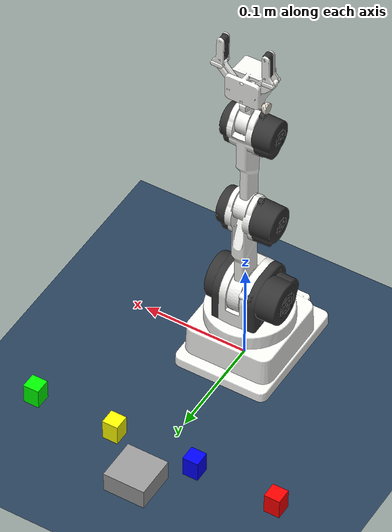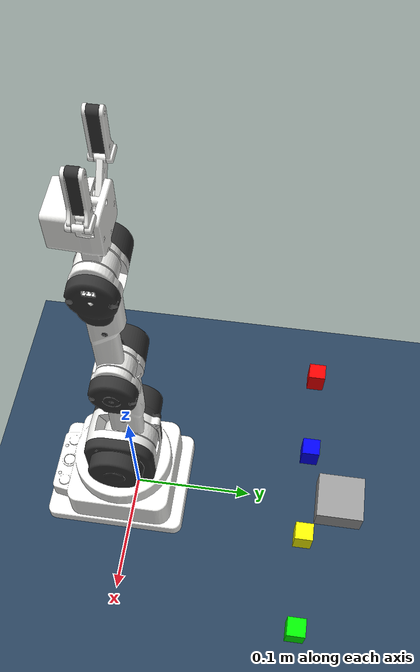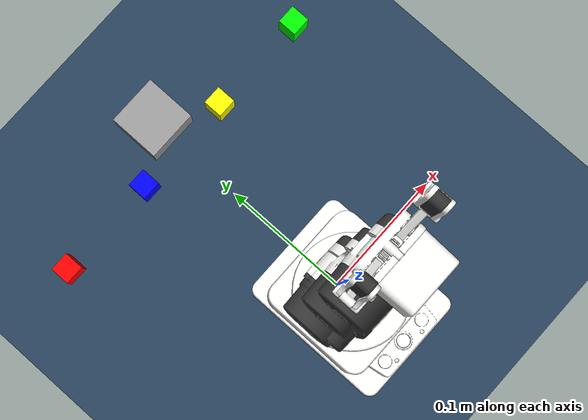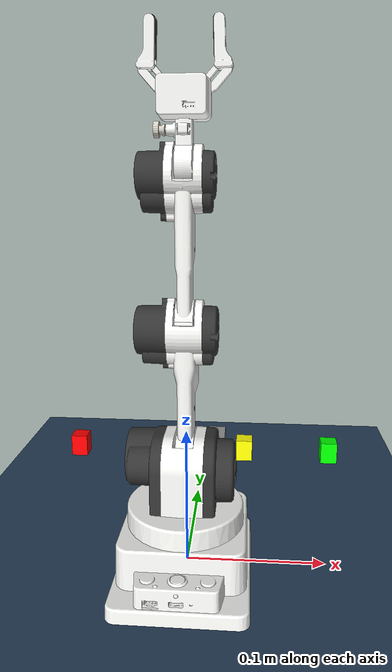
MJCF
<mujoco model="Raccoon_S_5cm_stack">
  <include file="RaccoonBot_S.xml"/>

  <statistic center="0.0 0 0.2" extent="0.5"/>

  <visual>
    <headlight diffuse="0.6 0.6 0.6" ambient="0.1 0.1 0.1" specular="0 0 0"/>
    <rgba haze="0.15 0.25 0.35 1"/>
    <global azimuth="120" elevation="-20"/>
  </visual>

  <asset>
    <texture type="skybox" builtin="gradient" rgb1="0.3 0.5 0.7" rgb2="0 0 0" width="512" height="3072"/>
    <texture type="2d" name="groundplane" builtin="checker" mark="edge"
      rgb1="0.2 0.3 0.4" rgb2="0.1 0.2 0.3"
      markrgb="0.8 0.8 0.8" width="300" height="300"/>
    <material name="groundplane" texture="groundplane" texuniform="true" texrepeat="20 20" reflectance="0.0"/>
  </asset>

  <worldbody>
    <light pos="0 0 1.5" dir="0 0 -1" directional="true"/>
    <geom name="floor" size="0.5 0.5 0.05" type="plane" material="groundplane"/>
    <camera name="front_view" pos="0.0 0.50 0.13" xyaxes="-1 0 0 0 -0.18 0.98" fovy="45"/>

    <body name="stack_base" pos="0.0 0.18 0.01">
      <geom name="geom_base" type="box" size="0.02 0.02 0.01"
        rgba="0.6 0.6 0.6 1" friction="1 1 1" condim="6"
        solimp="0.99 0.99 0.001" solref="0.002 1"/>
    </body>

    <!-- Red object: 기존 코드 호환을 위해 body name은 target_object 유지 -->
    <body name="target_object" pos="-0.12 0.15 0.02">
      <freejoint/>
      <inertial pos="0 0 0" mass="0.05" diaginertia="0.00000001 0.00000001 0.00000001"/>
      <geom name="geom_red" type="box" size="0.0075 0.0075 0.01"
        rgba="1 0 0 1"
        friction="1 1 1" condim="6"
        solimp="0.99 0.99 0.001" solref="0.002 1"/>
    </body>

    <!-- Blue object -->
    <body name="target_object_blue" pos="-0.04 0.15 0.02">
      <freejoint/>
      <inertial pos="0 0 0" mass="0.05" diaginertia="0.00000001 0.00000001 0.00000001"/>
      <geom name="geom_blue" type="box" size="0.0075 0.0075 0.01"
        rgba="0 0 1 1"
        friction="1 1 1" condim="6"
        solimp="0.99 0.99 0.001" solref="0.002 1"/>
    </body>

    <!-- Yellow object -->
    <body name="target_object_yellow" pos="0.04 0.15 0.02">
      <freejoint/>
      <inertial pos="0 0 0" mass="0.05" diaginertia="0.00000001 0.00000001 0.00000001"/>
      <geom name="geom_yellow" type="box" size="0.0075 0.0075 0.01"
        rgba="1 1 0 1"
        friction="1 1 1" condim="6"
        solimp="0.99 0.99 0.001" solref="0.002 1"/>
    </body>

    <!-- Green object -->
    <body name="target_object_green" pos="0.12 0.15 0.02">
      <freejoint/>
      <inertial pos="0 0 0" mass="0.05" diaginertia="0.00000001 0.00000001 0.00000001"/>
      <geom name="geom_green" type="box" size="0.0075 0.0075 0.01"
        rgba="0 1 0 1"
        friction="1 1 1" condim="6"
        solimp="0.99 0.99 0.001" solref="0.002 1"/>
    </body>

  </worldbody>
</mujoco>

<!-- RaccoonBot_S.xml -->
<!-- 로보메이션 라쿤봇 MuJoCo 모델 --> <!-- Robomation RaccoonBot MuJoCo Model -->

<mujoco model="RaccoonBot_S">
  <compiler inertiafromgeom="false" angle="radian" meshdir="assets"/>
  <option integrator="implicitfast" timestep="0.0002" cone="elliptic" noslip_iterations="100"/>

  <default>
    <!-- class 선언 (그룹별로 묶어서 물리계산에 사용할 것과 시각적요소로만 사용할것 분리 -->
    <default class="collision">
      <geom group="3" type="mesh" rgba="255 0 0 0.1"/> <!-- 그룹 3부터 안보임. 보려면 키보드 숫자 누르면됨. -->
    </default>

    <default class="visual">
      <geom group="1" type="mesh" contype="0" conaffinity="0" material="White"/>
    </default>

    <!-- 조인트 기본값 설정 -->
    <joint damping="0.001"></joint>
  </default>

  <asset>
    <!-- 색상 정의 -->
    <material name="White" rgba="0.964706 0.964706 0.952941 1" specular="0.5" shininess="0.5"/>
    <material name="Black"  rgba="0.2 0.2 0.2 1" specular="0.7" shininess="0.5"/>
    <material name="Gray"  rgba="0.501960784 0.501960784 0.501960784 1" specular="0.5" shininess="0.5"/>
    <material name="Silver"  rgba="0.819608 0.8 0.752941 1" specular="0.5" shininess="0.5"/>

    <!-- 물리계산용 덩어리-->
    <mesh name="base_link" file="base_link.STL"/>
    <mesh name="Link1" file="Link1.STL"/>
    <mesh name="Link2" file="Link2.STL"/>
    <mesh name="Link3" file="Link3.STL"/>
    <mesh name="Link4" file="Link4.STL"/>
    <mesh name="Gripper_Body" file="Gripper_Body.STL"/>
    <mesh name="Gripper_L_Inner" file="Gripper_L_Inner.STL"/>
    <mesh name="Gripper_L_Outer" file="Gripper_L_Outer.STL"/>
    <mesh name="Gripper_L_Finger" file="Gripper_L_Finger.STL"/>
    <mesh name="Gripper_R_Inner" file="Gripper_R_Inner.STL"/>
    <mesh name="Gripper_R_Outer" file="Gripper_R_Outer.STL"/>
    <mesh name="Gripper_R_Finger" file="Gripper_R_Finger.STL"/>

        <!-- 색입히기용 파츠 -->
    <mesh file="visual/Gripper_Left_Finger.STL" scale="0.001 0.001 0.001"/>
    <mesh file="visual/Gripper_Left_Silicon.STL" scale="0.001 0.001 0.001"/>
    <mesh file="visual/Gripper_Right_Finger.STL" scale="0.001 0.001 0.001"/>
    <mesh file="visual/Gripper_Right_Silicon.STL" scale="0.001 0.001 0.001"/>
    <mesh file="visual/Link1_cover.STL" scale="0.001 0.001 0.001"/>
    <mesh file="visual/Link1_sticker.STL" scale="0.001 0.001 0.001"/>
    <mesh file="visual/Link1_white.STL" scale="0.001 0.001 0.001"/>
    <mesh file="visual/Link2_cover.STL" scale="0.001 0.001 0.001"/>
    <mesh file="visual/Link2_sticker.STL" scale="0.001 0.001 0.001"/>
    <mesh file="visual/Link2_white.STL" scale="0.001 0.001 0.001"/>
    <mesh file="visual/Link3_cover.STL" scale="0.001 0.001 0.001"/>
    <mesh file="visual/Link3_sticker.STL" scale="0.001 0.001 0.001"/>
    <mesh file="visual/Link3_white.STL" scale="0.001 0.001 0.001"/>
    <mesh file="visual/Link4_black_screw.STL" scale="0.001 0.001 0.001"/>
    <mesh file="visual/Link4_silver_screw.STL" scale="0.001 0.001 0.001"/>
    <mesh file="visual/Link4_white.STL" scale="0.001 0.001 0.001"/>
  </asset>

  <worldbody>
    <body name="Base" pos="0 0 0">
      <inertial pos="-1.683E-05 -0.014249 0.0092419" mass="0.57431" fullinertia="0.00055171 0.00034874 0.00076716 1E-07 -2.5E-07 -8.36E-06"/>
      <geom class="collision" type="mesh" mesh="base_link"/> <!-- 물리 계산용 -->
      <geom class="visual" type="mesh" mesh="base_link"/> <!-- 색칠 -->

      <body name="Link1" pos="0 0 0.057088">
        <inertial pos="-0.013986 -0.0022667 0.020829" quat="0.2836 0.500773 0.328724 0.748824" mass="0.1138" diaginertia="5.60418e-05 5.26103e-05 3.52979e-05"/>
        <joint name="Joint1" pos="0 0 0" axis="0 0 1" range="-2.0944 2.0944" damping="0" armature="0" frictionloss="0"/>
        <geom class="collision" type="mesh" mesh="Link1"/> <!-- 물리 계산용 -->
        <geom class="visual" type="mesh" mesh="Link1_cover" material="Black"/> <!-- 색칠 -->
        <geom class="visual" type="mesh" mesh="Link1_sticker" material="Gray"/> <!-- 색칠 -->
        <geom class="visual" type="mesh" mesh="Link1_white"/> <!-- 색칠 -->

        <body name="Link2" pos="0 0 0.023662" quat="0.499998 -0.5 -0.500002 0.5">
          <inertial pos="0.0068563 -0.07084 0.008848" quat="0.614196 0.689345 -0.323933 0.206482" mass="0.0687" diaginertia="0.000109909 9.71792e-05 1.81218e-05"/>
          <joint name="Joint2" pos="0 0 0" axis="0 0 -1" range="-1.5707 0.5237" damping="0" armature="0" frictionloss="0"/>
          <geom class="collision" type="mesh" mesh="Link2"/> <!-- 물리 계산용 -->
          <geom class="visual" type="mesh" mesh="Link2_cover" material="Black"/> <!-- 색칠 -->
          <geom class="visual" type="mesh" mesh="Link2_sticker" material="Gray"/> <!-- 색칠 -->
          <geom class="visual" type="mesh" mesh="Link2_white"/> <!-- 색칠 -->

          <body name="Link3" pos="1.0056e-05 -0.1 0" quat="-3.67321e-06 0 0 1">
            <inertial pos="0.0095601 0.090032 0.013618" quat="0.697287 0.617503 -0.178314 0.317308" mass="0.058" diaginertia="5.14233e-05 4.48418e-05 1.03349e-05"/>
            <joint name="Joint3" pos="0 0 0" axis="0 0 -1" range="-2.618 0" damping="0" armature="0" frictionloss="0"/>
            <geom class="collision" type="mesh" mesh="Link3"/> <!-- 물리 계산용 -->
            <geom class="visual" type="mesh" mesh="Link3_cover" material="Black"/> <!-- 색칠 -->
            <geom class="visual" type="mesh" mesh="Link3_sticker" material="Gray"/> <!-- 색칠 -->
            <geom class="visual" type="mesh" mesh="Link3_white"/> <!-- 색칠 -->

            <body name="Link4" pos="-1.0056e-05 0.1 0">
              <inertial pos="0.00246483 0.0280152 0.0033435" quat="0.767161 0.570932 -0.211927 0.201462" mass="0.0247" diaginertia="8.82308e-06 8.70279e-06 3.10133e-06"/>
              <joint name="Joint4" pos="0 0 0" axis="0 0 -1" range="-1.8326 1.8326" damping="0" armature="0" frictionloss="0"/>
              <geom class="collision" type="mesh" mesh="Link4"/> <!-- 물리 계산용 -->
              <geom class="collision" type="mesh" mesh="Gripper_Body"/> <!-- 물리 계산용 -->
              <geom class="visual" type="mesh" mesh="Link4_black_screw" material="Black"/> <!-- 색칠 -->
              <geom class="visual" type="mesh" mesh="Link4_silver_screw" material="Silver"/> <!-- 색칠 -->
              <geom class="visual" type="mesh" mesh="Link4_white"/> <!-- 색칠 -->

              <body name="Gripper_L_Inner" pos="-0.0011487 0.042412 0.005" quat="0.707105 0 0.707108 0">
                <inertial pos="-0.0059722 0.0072138 -0.0046001" quat="0.653281 0.653281 -0.270598 -0.270598" mass="0.00058" diaginertia="5e-08 5e-08 1e-08"/>
                <joint name="Gripper_L_Inner" pos="0 0 0" axis="0 0 1" range="-0.85 0.15701"/>
                <geom class="collision" type="mesh" mesh="Gripper_L_Inner"/> <!-- 물리 계산용 -->
                <geom class="visual" type="mesh" mesh="Gripper_L_Inner"/> <!-- 색칠 -->
                <site name="left_inner_site" rgba="255 0 0 0" pos="-0.0153878 0.0170945 -0.0044918" size="0.0025"/> <!-- 조인트 결합용 좌표지점 -->
              </body>

              <body name="Gripper_L_Outer" pos="-0.0010987 0.042412 0.0125" quat="0.707105 0 0.707108 0">
                <inertial pos="-0.0084869 0.0087458 -0.0045013" quat="0.5 0.5 -0.5 0.5" mass="0.00053" diaginertia="4e-08 2e-08 2e-08"/>
                <joint name="Gripper_L_Outer" type="hinge" pos="0 0 0" axis="0 0 1" range="-0.85 0.163"/>
                <geom class="collision" type="mesh" mesh="Gripper_L_Outer"/> <!-- 물리 계산용 -->
                <geom class="visual" type="mesh" mesh="Gripper_L_Outer"/> <!-- 색칠 -->

                <body name="Gripper_L_Finger" pos="-0.015385 0.017298 0.00025815">
                  <inertial pos="0.0061645 0.013303 -0.0049078" quat="0.705781 0.705781 0.0432795 0.0432795" mass="0.002184" diaginertia="2.02462e-07 1.8e-07 3.75379e-08"/>
                  <joint name="Gripper_L_Finger" type="hinge" pos="0 0 0" axis="0 0 1" range="-0.2 0.9"/>
                  <geom class="collision" type="mesh" mesh="Gripper_L_Finger"/> <!-- 물리 계산용 -->
                  <geom class="visual" type="mesh" mesh="Gripper_Left_Finger"/> <!-- 색칠 -->
                  <geom class="visual" type="mesh" mesh="Gripper_Left_Silicon" material="Black"/> <!-- 색칠 -->
                  <geom class="collision" name="L_pad" type="box" pos="0.0101845 0.0158542 -0.0048" euler="0 0 -0.03" size="0.0001 0.01 0.00275" rgba="1 1 0 0.5" friction="1 1 1" condim="6" solimp="0.99 0.99 0.001" solref="0.002 1" margin="0.0001" /> <!-- 그리퍼 마찰계산용 박스영역 friction="슬라이딩 비틀림 구름 마찰" -->
                  <site name="L_touch_site" type="box" pos="0.0101845 0.0158542 -0.0048" euler="0 0 -0.03" size="0.0002 0.0101 0.0028" rgba="0 0 1 0"/>
                  <site name="left_inner_site2" rgba="0 255 0 0" pos="0.0074969 -0.0002037 -0.0048000" size="0.0025"/> <!-- 조인트 결합용 좌표지점 -->
                </body>
              </body>

              <body name="Gripper_R_Inner" pos="-0.0011487 0.041715 -0.0049757" quat="0.707105 0 0.707108 0">
                <inertial pos="0.0055753 0.0073917 -0.0044419" quat="0.653281 0.653281 0.270598 0.270598" mass="0.00057857" diaginertia="5e-08 5e-08 1e-08"/>
                <joint name="Gripper_R_Inner" type="hinge" pos="0 0 0" axis="0 0 1" range="-0.15701 0.85"/>
                <geom class="collision" type="mesh" mesh="Gripper_R_Inner"/> <!-- 물리 계산용 -->
                <geom class="visual" type="mesh" mesh="Gripper_R_Inner"/> <!-- 색칠 -->
                <site name="right_inner_site" rgba="255 0 0 0" pos="0.0154019 0.0178000 -0.0044418" size="0.0025"/> <!-- 조인트 결합용 좌표지점 -->
              </body>

              <body name="Gripper_R_Outer" pos="-0.0010988 0.042412 -0.0125" quat="0.707105 0 0.707108 0">
                <inertial pos="0.0084821 0.0087504 -0.0045013" quat="0.5 0.5 -0.5 0.5" mass="0.00053" diaginertia="4e-08 2e-08 2e-08"/>
                <joint name="Gripper_R_Outer" type="hinge" pos="0 0 0" axis="0 0 1" range="-0.181 0.85"/>
                <geom class="collision" type="mesh" mesh="Gripper_R_Outer"/> <!-- 물리 계산용 -->
                <geom class="visual" type="mesh" mesh="Gripper_R_Outer"/> <!-- 색칠 -->

                <body name="Gripper_R_Finger" pos="0.015375 0.017307 0.00025815">
                  <inertial pos="-0.0061642 0.013303 -0.0048578" quat="0.705781 0.705781 -0.0432795 -0.0432795" mass="0.002184" diaginertia="2.02462e-07 1.8e-07 3.75379e-08"/>
                  <joint name="Gripper_R_Finger" type="hinge" pos="0 0 0" axis="0 0 1" range="-0.9 0.2"/>
                  <geom class="collision" type="mesh" mesh="Gripper_R_Finger"/> <!-- 물리 계산용 -->
                  <geom class="visual" type="mesh" mesh="Gripper_Right_Finger"/> <!-- 색칠 -->
                  <geom class="visual" type="mesh" mesh="Gripper_Right_Silicon" material="Black"/> <!-- 색칠 -->
                  <geom class="collision" name="R_pad" type="box" pos="-0.0101845 0.0158542 -0.0048" euler="0 0 0.03" size="0.0001 0.01 0.00275" rgba="1 1 0 0.5" friction="1 1 1" condim="6" solimp="0.99 0.99 0.001" solref="0.002 1" margin="0.0001"/> <!-- 그리퍼 마찰계산용 박스영역 friction="슬라이딩 비틀림 구름 마찰" -->
                  <site name="R_touch_site" type="box" pos="-0.0101845 0.0158542 -0.0048" euler="0 0 0.03" size="0.0002 0.0101 0.0028" rgba="0 0 1 0"/>
                  <site name="right_inner_site2" rgba="0 255 0 0" pos="-0.0074975 -0.0002036 -0.0047500" size="0.0025"/> <!-- 조인트 결합용 좌표지점 -->
                </body>
              </body>
            </body>
          </body>
        </body>
      </body>
    </body>
  </worldbody>

  <equality>
    <!-- gripper inner joint mirror mode (좌우 대칭 동작) -->
    <joint name="LR_gripper_mirror" joint1="Gripper_R_Inner" joint2="Gripper_L_Inner" polycoef="0 -1 0 0 0" solref="0.0005 1"/>
    <!-- gripper joint connection (closed loop 구성) -->
    <connect anchor="-0.0153878 0.0170945 -0.0044918" body1="Gripper_L_Inner" body2="Gripper_L_Finger" solref="0.001 1"/>
    <connect anchor="0.0154019 0.0178000 -0.0044418" body1="Gripper_R_Inner" body2="Gripper_R_Finger" solref="0.001 1"/>
  </equality>

  <contact>
    <!-- 충돌계산 예외처리 (연산량 감소) -->
    <exclude body1="Base" body2="Link1"/>
    <exclude body1="Link4" body2="Gripper_L_Inner"/>
    <exclude body1="Link4" body2="Gripper_L_Outer"/>
    <exclude body1="Link4" body2="Gripper_R_Inner"/>
    <exclude body1="Link4" body2="Gripper_R_Outer"/>
    <exclude body1="Gripper_L_Inner" body2="Gripper_R_Inner"/>
    <exclude body1="Gripper_L_Inner" body2="Gripper_L_Outer"/>
    <exclude body1="Gripper_L_Inner" body2="Gripper_L_Finger"/>
    <exclude body1="Gripper_R_Inner" body2="Gripper_R_Outer"/>
    <exclude body1="Gripper_R_Inner" body2="Gripper_R_Finger"/>
    <exclude body1="Gripper_L_Outer" body2="Gripper_L_Finger"/>
    <exclude body1="Gripper_R_Outer" body2="Gripper_R_Finger"/>
  </contact>

  <actuator> <!-- 액추에이터(모터) -->
    <!-- position 위치제어모드 / name: 제어할 때 부를 이름, joint: 실제로 돌리는 조인트명, kp: 비례Gain, ctrlrange: 입력제한범위 -->
    <position name="Joint1" joint="Joint1" ctrlrange="-2.0944 2.0944" kp="10" kv="1" forcerange="-0.08 0.08"/> <!-- 단위 rad, Nm -->
    <position name="Joint2" joint="Joint2" ctrlrange="-1.5707 0.5237" kp="30" kv="10" forcerange="-0.5 0.5"/> <!-- forcerange에 모터스펙 Pull-In Torque 사용 -->
    <position name="Joint3" joint="Joint3" ctrlrange="-2.6180 0.0000" kp="30" kv="10" forcerange="-0.2 0.2"/>
    <position name="Joint4" joint="Joint4" ctrlrange="-1.8327 1.8327" kp="30" kv="10" forcerange="-0.2 0.2"/>
    <position name="Gripper" joint="Gripper_L_Inner" ctrlrange="-0.85 0.15701" kp="2.5" forcerange="-0.05 0.05"/> <!-- 정확한 force 모름 -->  </actuator>

  <sensor>
    <touch name="sensor_L" site="L_touch_site"/>
    <touch name="sensor_R" site="R_touch_site"/>
  </sensor>

</mujoco>
